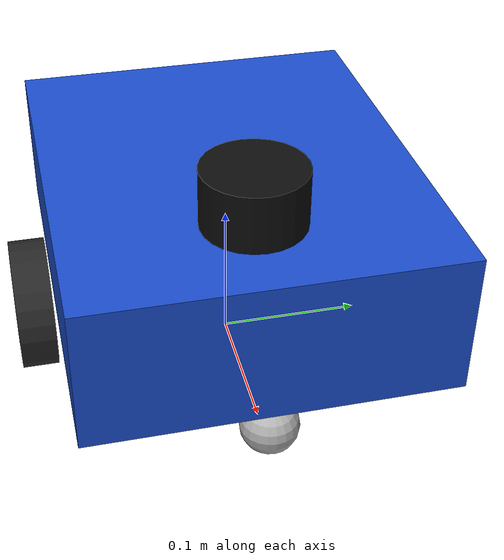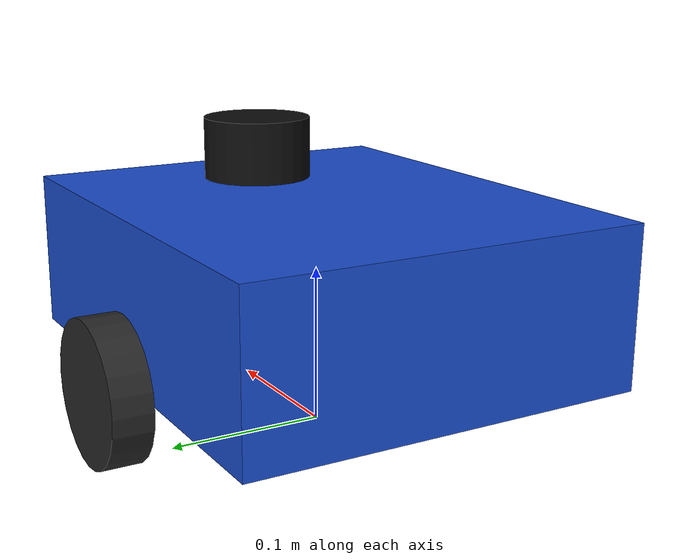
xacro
<?xml version="1.0"?>
<robot name="diff_drive_amr" xmlns:xacro="http://www.ros.org/wiki/xacro">

  <!-- 1. Physical Parameters (Metric SI Units)                              -->
  <xacro:property name="chassis_length" value="0.30"/> <!-- 30 cm -->
  <xacro:property name="chassis_width"  value="0.25"/> <!-- 25 cm -->
  <xacro:property name="chassis_height" value="0.10"/> <!-- 10 cm -->
  <xacro:property name="chassis_mass"   value="2.50"/> <!-- 2.5 kg -->

  <xacro:property name="wheel_radius"   value="0.045"/> <!-- 45 mm -->
  <xacro:property name="wheel_width"    value="0.025"/> <!-- 25 mm -->
  <xacro:property name="wheel_mass"     value="0.20"/>
  <xacro:property name="track_width"    value="0.28"/>  <!-- 28 cm wheel-to-wheel -->

  <xacro:property name="caster_radius"  value="0.020"/> <!-- 20 mm -->
  <xacro:property name="caster_mass"    value="0.08"/>

  <!-- 2. Inertial Macro Helpers (Rigid-Body Dynamics)                       -->
  <xacro:macro name="box_inertia" params="m x y z">
    <inertial>
      <mass value="${m}"/>
      <inertia ixx="${(m/12.0)*(y*y + z*z)}" ixy="0.0" ixz="0.0"
               iyy="${(m/12.0)*(x*x + z*z)}" iyz="0.0"
               izz="${(m/12.0)*(x*x + y*y)}"/>
    </inertial>
  </xacro:macro>

  <xacro:macro name="cylinder_inertia" params="m r h">
    <inertial>
      <mass value="${m}"/>
      <inertia ixx="${(m/12.0)*(3*r*r + h*h)}" ixy="0.0" ixz="0.0"
               iyy="${(m/12.0)*(3*r*r + h*h)}" iyz="0.0"
               izz="${(m/2.0)*(r*r)}"/>
    </inertial>
  </xacro:macro>

  <!-- 3. Base Footprint & Main Chassis Link                                 -->
  <link name="base_footprint"/>

  <joint name="base_footprint_joint" type="fixed">
    <parent link="base_footprint"/>
    <child link="base_link"/>
    <origin xyz="0 0 ${wheel_radius}" rpy="0 0 0"/>
  </joint>

  <link name="base_link">
    <visual>
      <origin xyz="0 0 ${chassis_height/2}" rpy="0 0 0"/>
      <geometry>
        <box size="${chassis_length} ${chassis_width} ${chassis_height}"/>
      </geometry>
      <material name="chassis_blue">
        <color rgba="0.1 0.3 0.8 1.0"/>
      </material>
    </visual>
    <collision>
      <origin xyz="0 0 ${chassis_height/2}" rpy="0 0 0"/>
      <geometry>
        <box size="${chassis_length} ${chassis_width} ${chassis_height}"/>
      </geometry>
    </collision>
    <xacro:box_inertia m="${chassis_mass}" x="${chassis_length}" y="${chassis_width}" z="${chassis_height}"/>
  </link>

  <!-- 4. Left & Right Actuated Traction Wheels                              -->
  <xacro:macro name="wheel" params="prefix y_offset">
    <link name="${prefix}_wheel">
      <visual>
        <origin xyz="0 0 0" rpy="${pi/2} 0 0"/>
        <geometry>
          <cylinder radius="${wheel_radius}" length="${wheel_width}"/>
        </geometry>
        <material name="tire_black">
          <color rgba="0.15 0.15 0.15 1.0"/>
        </material>
      </visual>
      <collision>
        <origin xyz="0 0 0" rpy="${pi/2} 0 0"/>
        <geometry>
          <cylinder radius="${wheel_radius}" length="${wheel_width}"/>
        </geometry>
      </collision>
      <xacro:cylinder_inertia m="${wheel_mass}" r="${wheel_radius}" h="${wheel_width}"/>
    </link>

    <joint name="${prefix}_wheel_joint" type="continuous">
      <parent link="base_link"/>
      <child link="${prefix}_wheel"/>
      <origin xyz="0 ${y_offset} 0" rpy="0 0 0"/>
      <axis xyz="0 1 0"/>
    </joint>
  </xacro:macro>

  <xacro:wheel prefix="left"  y_offset="${track_width/2}"/>
  <xacro:wheel prefix="right" y_offset="${-track_width/2}"/>

  <!-- 5. Front Passive Caster Wheel (Frictionless Ground Support)           -->
  <link name="caster_wheel">
    <visual>
      <geometry>
        <sphere radius="${caster_radius}"/>
      </geometry>
      <material name="caster_metal">
        <color rgba="0.7 0.7 0.7 1.0"/>
      </material>
    </visual>
    <collision>
      <geometry>
        <sphere radius="${caster_radius}"/>
      </geometry>
    </collision>
    <inertial>
      <mass value="${caster_mass}"/>
      <inertia ixx="${(2.0/5.0)*caster_mass*caster_radius*caster_radius}" ixy="0" ixz="0"
               iyy="${(2.0/5.0)*caster_mass*caster_radius*caster_radius}" iyz="0"
               izz="${(2.0/5.0)*caster_mass*caster_radius*caster_radius}"/>
    </inertial>
  </link>

  <joint name="caster_wheel_joint" type="fixed">
    <parent link="base_link"/>
    <child link="caster_wheel"/>
    <origin xyz="${chassis_length/2 - caster_radius} 0 ${caster_radius - wheel_radius}" rpy="0 0 0"/>
  </joint>

  <!-- 6. Planar 2D LiDAR Sensor Mount (laser_frame)                         -->
  <link name="laser_frame">
    <visual>
      <geometry>
        <cylinder radius="0.035" length="0.040"/>
      </geometry>
      <material name="lidar_black">
        <color rgba="0.05 0.05 0.05 1.0"/>
      </material>
    </visual>
    <collision>
      <geometry>
        <cylinder radius="0.035" length="0.040"/>
      </geometry>
    </collision>
    <xacro:cylinder_inertia m="0.120" r="0.035" h="0.040"/>
  </link>

  <joint name="laser_joint" type="fixed">
    <parent link="base_link"/>
    <child link="laser_frame"/>
    <origin xyz="0.08 0 ${chassis_height + 0.02}" rpy="0 0 0"/>
  </joint>

</robot>
